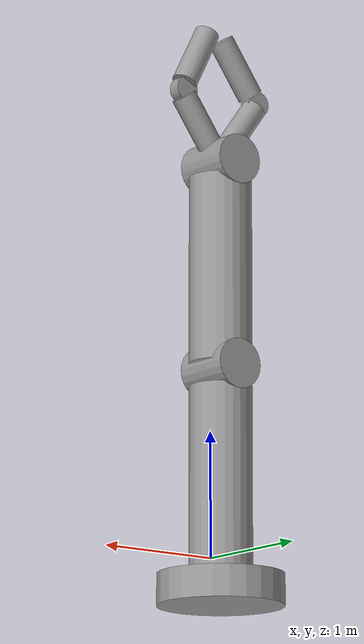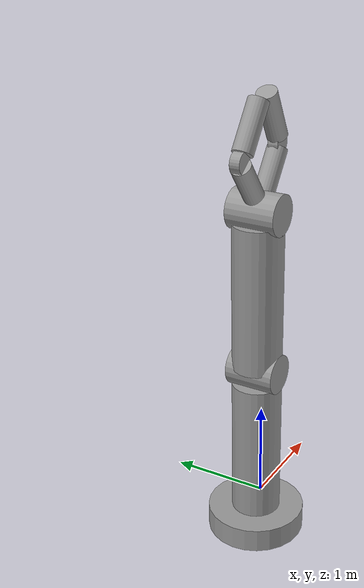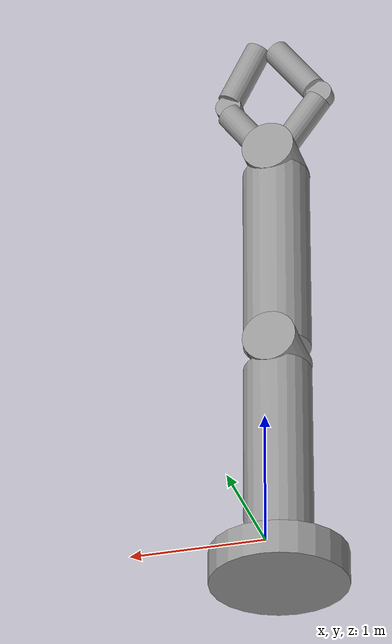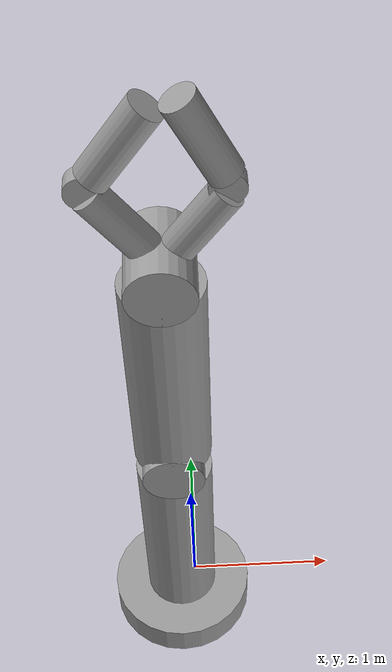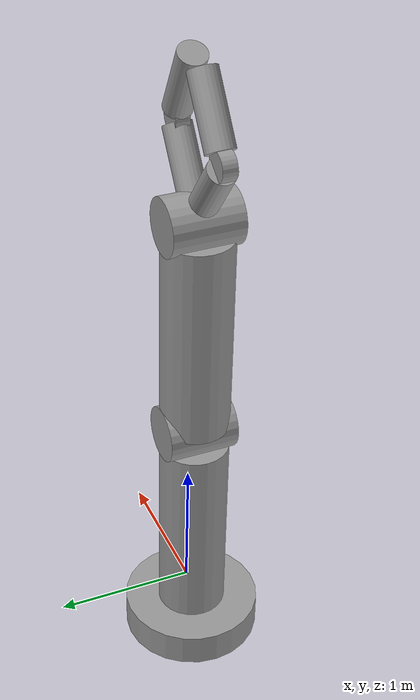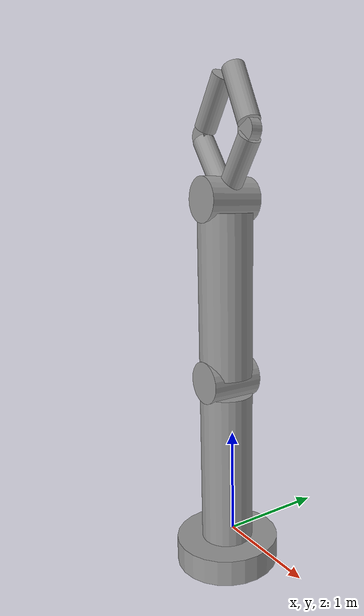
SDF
<?xml version='1.0'?>
<sdf version='1.6'>
  <model name='arm'>
    <link name='link_0'>
      <pose frame=''>-0.098684 -1.2e-05 -0.234647 0 -0 0</pose>
      <inertial>
        <mass>1</mass>
        <inertia>
          <ixx>0.145833</ixx>
          <ixy>0</ixy>
          <ixz>0</ixz>
          <iyy>0.145833</iyy>
          <iyz>0</iyz>
          <izz>0.125</izz>
        </inertia>
        <pose frame=''>0 0 0 0 -0 0</pose>
      </inertial>
      <gravity>1</gravity>
      <self_collide>0</self_collide>
      <kinematic>0</kinematic>
      <visual name='visual'>
        <pose frame=''>0 0 0 0 -0 0</pose>
        <geometry>
          <cylinder>
            <radius>0.5</radius>
            <length>0.25</length>
          </cylinder>
        </geometry>
        <material>
          <lighting>1</lighting>
          <script>
            <uri>file://media/materials/scripts/gazebo.material</uri>
            <name>Gazebo/Grey</name>
          </script>
          <shader type='pixel'>
            <normal_map>__default__</normal_map>
          </shader>
          <ambient>0.3 0.3 0.3 1</ambient>
          <diffuse>0.7 0.7 0.7 1</diffuse>
          <specular>0.01 0.01 0.01 1</specular>
          <emissive>0 0 0 1</emissive>
        </material>
        <transparency>0</transparency>
        <cast_shadows>1</cast_shadows>
      </visual>
      <collision name='collision'>
        <laser_retro>0</laser_retro>
        <max_contacts>10</max_contacts>
        <pose frame=''>0 0 0 0 -0 0</pose>
        <geometry>
          <cylinder>
            <radius>0.5</radius>
            <length>0.25</length>
          </cylinder>
        </geometry>
        <surface>
          <friction>
            <ode>
              <mu>1</mu>
              <mu2>1</mu2>
              <fdir1>0 0 0</fdir1>
              <slip1>0</slip1>
              <slip2>0</slip2>
            </ode>
            <torsional>
              <coefficient>1</coefficient>
              <patch_radius>0</patch_radius>
              <surface_radius>0</surface_radius>
              <use_patch_radius>1</use_patch_radius>
              <ode>
                <slip>0</slip>
              </ode>
            </torsional>
          </friction>
          <bounce>
            <restitution_coefficient>0</restitution_coefficient>
            <threshold>1e+06</threshold>
          </bounce>
          <contact>
            <collide_without_contact>0</collide_without_contact>
            <collide_without_contact_bitmask>1</collide_without_contact_bitmask>
            <collide_bitmask>1</collide_bitmask>
            <ode>
              <soft_cfm>0</soft_cfm>
              <soft_erp>0.2</soft_erp>
              <kp>1e+13</kp>
              <kd>1</kd>
              <max_vel>0.01</max_vel>
              <min_depth>0</min_depth>
            </ode>
            <bullet>
              <split_impulse>1</split_impulse>
              <split_impulse_penetration_threshold>-0.01</split_impulse_penetration_threshold>
              <soft_cfm>0</soft_cfm>
              <soft_erp>0.2</soft_erp>
              <kp>1e+13</kp>
              <kd>1</kd>
            </bullet>
          </contact>
        </surface>
      </collision>
    </link>
    <link name='link_1'>
      <pose frame=''>-0.098684 -1.2e-05 0.615353 0 -0 0</pose>
      <inertial>
        <mass>1</mass>
        <inertia>
          <ixx>0.145833</ixx>
          <ixy>0</ixy>
          <ixz>0</ixz>
          <iyy>0.145833</iyy>
          <iyz>0</iyz>
          <izz>0.125</izz>
        </inertia>
        <pose frame=''>0 0 0 0 -0 0</pose>
      </inertial>
      <gravity>1</gravity>
      <self_collide>0</self_collide>
      <kinematic>0</kinematic>
      <visual name='visual'>
        <pose frame=''>0 0 0 0 -0 0</pose>
        <geometry>
          <cylinder>
            <radius>0.25</radius>
            <length>1.5</length>
          </cylinder>
        </geometry>
        <material>
          <lighting>1</lighting>
          <script>
            <uri>file://media/materials/scripts/gazebo.material</uri>
            <name>Gazebo/Grey</name>
          </script>
          <shader type='pixel'>
            <normal_map>__default__</normal_map>
          </shader>
          <ambient>0.3 0.3 0.3 1</ambient>
          <diffuse>0.7 0.7 0.7 1</diffuse>
          <specular>0.01 0.01 0.01 1</specular>
          <emissive>0 0 0 1</emissive>
        </material>
        <transparency>0</transparency>
        <cast_shadows>1</cast_shadows>
      </visual>
      <collision name='collision'>
        <laser_retro>0</laser_retro>
        <max_contacts>10</max_contacts>
        <pose frame=''>0 0 0 0 -0 0</pose>
        <geometry>
          <cylinder>
            <radius>0.25</radius>
            <length>1.5</length>
          </cylinder>
        </geometry>
        <surface>
          <friction>
            <ode>
              <mu>1</mu>
              <mu2>1</mu2>
              <fdir1>0 0 0</fdir1>
              <slip1>0</slip1>
              <slip2>0</slip2>
            </ode>
            <torsional>
              <coefficient>1</coefficient>
              <patch_radius>0</patch_radius>
              <surface_radius>0</surface_radius>
              <use_patch_radius>1</use_patch_radius>
              <ode>
                <slip>0</slip>
              </ode>
            </torsional>
          </friction>
          <bounce>
            <restitution_coefficient>0</restitution_coefficient>
            <threshold>1e+06</threshold>
          </bounce>
          <contact>
            <collide_without_contact>0</collide_without_contact>
            <collide_without_contact_bitmask>1</collide_without_contact_bitmask>
            <collide_bitmask>1</collide_bitmask>
            <ode>
              <soft_cfm>0</soft_cfm>
              <soft_erp>0.2</soft_erp>
              <kp>1e+13</kp>
              <kd>1</kd>
              <max_vel>0.01</max_vel>
              <min_depth>0</min_depth>
            </ode>
            <bullet>
              <split_impulse>1</split_impulse>
              <split_impulse_penetration_threshold>-0.01</split_impulse_penetration_threshold>
              <soft_cfm>0</soft_cfm>
              <soft_erp>0.2</soft_erp>
              <kp>1e+13</kp>
              <kd>1</kd>
            </bullet>
          </contact>
        </surface>
      </collision>
    </link>
    <link name='link_1_clone'>
      <pose frame=''>-0.098684 -1.2e-05 2.29982 0 -0 0</pose>
      <inertial>
        <mass>1</mass>
        <inertia>
          <ixx>0.145833</ixx>
          <ixy>0</ixy>
          <ixz>0</ixz>
          <iyy>0.145833</iyy>
          <iyz>0</iyz>
          <izz>0.125</izz>
        </inertia>
        <pose frame=''>0 0 0 0 -0 0</pose>
      </inertial>
      <self_collide>0</self_collide>
      <kinematic>0</kinematic>
      <gravity>1</gravity>
      <visual name='visual'>
        <pose frame=''>0 0 0 0 -0 0</pose>
        <geometry>
          <cylinder>
            <radius>0.25</radius>
            <length>1.5</length>
          </cylinder>
        </geometry>
        <material>
          <lighting>1</lighting>
          <script>
            <uri>file://media/materials/scripts/gazebo.material</uri>
            <name>Gazebo/Grey</name>
          </script>
          <shader type='pixel'>
            <normal_map>__default__</normal_map>
          </shader>
          <ambient>0.3 0.3 0.3 1</ambient>
          <diffuse>0.7 0.7 0.7 1</diffuse>
          <specular>0.01 0.01 0.01 1</specular>
          <emissive>0 0 0 1</emissive>
        </material>
        <transparency>0</transparency>
        <cast_shadows>1</cast_shadows>
      </visual>
      <collision name='collision'>
        <laser_retro>0</laser_retro>
        <max_contacts>10</max_contacts>
        <pose frame=''>0 0 0 0 -0 0</pose>
        <geometry>
          <cylinder>
            <radius>0.25</radius>
            <length>1.5</length>
          </cylinder>
        </geometry>
        <surface>
          <friction>
            <ode>
              <mu>1</mu>
              <mu2>1</mu2>
              <fdir1>0 0 0</fdir1>
              <slip1>0</slip1>
              <slip2>0</slip2>
            </ode>
            <torsional>
              <coefficient>1</coefficient>
              <patch_radius>0</patch_radius>
              <surface_radius>0</surface_radius>
              <use_patch_radius>1</use_patch_radius>
              <ode>
                <slip>0</slip>
              </ode>
            </torsional>
          </friction>
          <bounce>
            <restitution_coefficient>0</restitution_coefficient>
            <threshold>1e+06</threshold>
          </bounce>
          <contact>
            <collide_without_contact>0</collide_without_contact>
            <collide_without_contact_bitmask>1</collide_without_contact_bitmask>
            <collide_bitmask>1</collide_bitmask>
            <ode>
              <soft_cfm>0</soft_cfm>
              <soft_erp>0.2</soft_erp>
              <kp>1e+13</kp>
              <kd>1</kd>
              <max_vel>0.01</max_vel>
              <min_depth>0</min_depth>
            </ode>
            <bullet>
              <split_impulse>1</split_impulse>
              <split_impulse_penetration_threshold>-0.01</split_impulse_penetration_threshold>
              <soft_cfm>0</soft_cfm>
              <soft_erp>0.2</soft_erp>
              <kp>1e+13</kp>
              <kd>1</kd>
            </bullet>
          </contact>
        </surface>
      </collision>
    </link>
    <link name='link_1_clone_clone'>
      <pose frame=''>-0.288715 -1.2e-05 3.47659 0 -0.628465 0</pose>
      <inertial>
        <mass>1</mass>
        <inertia>
          <ixx>0.145833</ixx>
          <ixy>0</ixy>
          <ixz>0</ixz>
          <iyy>0.145833</iyy>
          <iyz>0</iyz>
          <izz>0.125</izz>
        </inertia>
        <pose frame=''>0 0 0 0 -0 0</pose>
      </inertial>
      <self_collide>0</self_collide>
      <kinematic>0</kinematic>
      <gravity>1</gravity>
      <visual name='visual'>
        <pose frame=''>0 0 0 0 -0 0</pose>
        <geometry>
          <cylinder>
            <radius>0.1</radius>
            <length>0.5</length>
          </cylinder>
        </geometry>
        <material>
          <lighting>1</lighting>
          <script>
            <uri>file://media/materials/scripts/gazebo.material</uri>
            <name>Gazebo/Grey</name>
          </script>
          <shader type='pixel'>
            <normal_map>__default__</normal_map>
          </shader>
          <ambient>0.3 0.3 0.3 1</ambient>
          <diffuse>0.7 0.7 0.7 1</diffuse>
          <specular>0.01 0.01 0.01 1</specular>
          <emissive>0 0 0 1</emissive>
        </material>
        <transparency>0</transparency>
        <cast_shadows>1</cast_shadows>
      </visual>
      <collision name='collision'>
        <laser_retro>0</laser_retro>
        <max_contacts>10</max_contacts>
        <pose frame=''>0 0 0 0 -0 0</pose>
        <geometry>
          <cylinder>
            <radius>0.1</radius>
            <length>0.5</length>
          </cylinder>
        </geometry>
        <surface>
          <friction>
            <ode>
              <mu>1</mu>
              <mu2>1</mu2>
              <fdir1>0 0 0</fdir1>
              <slip1>0</slip1>
              <slip2>0</slip2>
            </ode>
            <torsional>
              <coefficient>1</coefficient>
              <patch_radius>0</patch_radius>
              <surface_radius>0</surface_radius>
              <use_patch_radius>1</use_patch_radius>
              <ode>
                <slip>0</slip>
              </ode>
            </torsional>
          </friction>
          <bounce>
            <restitution_coefficient>0</restitution_coefficient>
            <threshold>1e+06</threshold>
          </bounce>
          <contact>
            <collide_without_contact>0</collide_without_contact>
            <collide_without_contact_bitmask>1</collide_without_contact_bitmask>
            <collide_bitmask>1</collide_bitmask>
            <ode>
              <soft_cfm>0</soft_cfm>
              <soft_erp>0.2</soft_erp>
              <kp>1e+13</kp>
              <kd>1</kd>
              <max_vel>0.01</max_vel>
              <min_depth>0</min_depth>
            </ode>
            <bullet>
              <split_impulse>1</split_impulse>
              <split_impulse_penetration_threshold>-0.01</split_impulse_penetration_threshold>
              <soft_cfm>0</soft_cfm>
              <soft_erp>0.2</soft_erp>
              <kp>1e+13</kp>
              <kd>1</kd>
            </bullet>
          </contact>
        </surface>
      </collision>
    </link>
    <link name='link_1_clone_clone_clone'>
      <pose frame=''>-0.255993 -1.2e-05 3.98243 0 0.625 0</pose>
      <inertial>
        <mass>1</mass>
        <inertia>
          <ixx>0.145833</ixx>
          <ixy>0</ixy>
          <ixz>0</ixz>
          <iyy>0.145833</iyy>
          <iyz>0</iyz>
          <izz>0.125</izz>
        </inertia>
        <pose frame=''>0 0 0 0 -0 0</pose>
      </inertial>
      <self_collide>0</self_collide>
      <kinematic>0</kinematic>
      <gravity>1</gravity>
      <visual name='visual'>
        <pose frame=''>0 0 0 0 -0 0</pose>
        <geometry>
          <cylinder>
            <radius>0.1</radius>
            <length>0.5</length>
          </cylinder>
        </geometry>
        <material>
          <lighting>1</lighting>
          <script>
            <uri>file://media/materials/scripts/gazebo.material</uri>
            <name>Gazebo/Grey</name>
          </script>
          <shader type='pixel'>
            <normal_map>__default__</normal_map>
          </shader>
          <ambient>0.3 0.3 0.3 1</ambient>
          <diffuse>0.7 0.7 0.7 1</diffuse>
          <specular>0.01 0.01 0.01 1</specular>
          <emissive>0 0 0 1</emissive>
        </material>
        <transparency>0</transparency>
        <cast_shadows>1</cast_shadows>
      </visual>
      <collision name='collision'>
        <laser_retro>0</laser_retro>
        <max_contacts>10</max_contacts>
        <pose frame=''>0 0 0 0 -0 0</pose>
        <geometry>
          <cylinder>
            <radius>0.1</radius>
            <length>0.5</length>
          </cylinder>
        </geometry>
        <surface>
          <friction>
            <ode>
              <mu>1</mu>
              <mu2>1</mu2>
              <fdir1>0 0 0</fdir1>
              <slip1>0</slip1>
              <slip2>0</slip2>
            </ode>
            <torsional>
              <coefficient>1</coefficient>
              <patch_radius>0</patch_radius>
              <surface_radius>0</surface_radius>
              <use_patch_radius>1</use_patch_radius>
              <ode>
                <slip>0</slip>
              </ode>
            </torsional>
          </friction>
          <bounce>
            <restitution_coefficient>0</restitution_coefficient>
            <threshold>1e+06</threshold>
          </bounce>
          <contact>
            <collide_without_contact>0</collide_without_contact>
            <collide_without_contact_bitmask>1</collide_without_contact_bitmask>
            <collide_bitmask>1</collide_bitmask>
            <ode>
              <soft_cfm>0</soft_cfm>
              <soft_erp>0.2</soft_erp>
              <kp>1e+13</kp>
              <kd>1</kd>
              <max_vel>0.01</max_vel>
              <min_depth>0</min_depth>
            </ode>
            <bullet>
              <split_impulse>1</split_impulse>
              <split_impulse_penetration_threshold>-0.01</split_impulse_penetration_threshold>
              <soft_cfm>0</soft_cfm>
              <soft_erp>0.2</soft_erp>
              <kp>1e+13</kp>
              <kd>1</kd>
            </bullet>
          </contact>
        </surface>
      </collision>
    </link>
    <link name='link_1_clone_clone_clone_0'>
      <pose frame=''>0.145526 4e-05 4.00105 0 -0.466826 0</pose>
      <inertial>
        <mass>1</mass>
        <inertia>
          <ixx>0.145833</ixx>
          <ixy>0</ixy>
          <ixz>0</ixz>
          <iyy>0.145833</iyy>
          <iyz>0</iyz>
          <izz>0.125</izz>
        </inertia>
        <pose frame=''>0 0 0 0 -0 0</pose>
      </inertial>
      <self_collide>0</self_collide>
      <kinematic>0</kinematic>
      <visual name='visual'>
        <pose frame=''>0 0 0 0 -0 0</pose>
        <geometry>
          <cylinder>
            <radius>0.1</radius>
            <length>0.5</length>
          </cylinder>
        </geometry>
        <material>
          <lighting>1</lighting>
          <script>
            <uri>file://media/materials/scripts/gazebo.material</uri>
            <name>Gazebo/Grey</name>
          </script>
          <shader type='pixel'>
            <normal_map>__default__</normal_map>
          </shader>
          <ambient>0.3 0.3 0.3 1</ambient>
          <diffuse>0.7 0.7 0.7 1</diffuse>
          <specular>0.01 0.01 0.01 1</specular>
          <emissive>0 0 0 1</emissive>
        </material>
        <transparency>0</transparency>
        <cast_shadows>1</cast_shadows>
      </visual>
      <collision name='collision'>
        <laser_retro>0</laser_retro>
        <max_contacts>10</max_contacts>
        <pose frame=''>0 0 0 0 -0 0</pose>
        <geometry>
          <cylinder>
            <radius>0.1</radius>
            <length>0.5</length>
          </cylinder>
        </geometry>
        <surface>
          <friction>
            <ode>
              <mu>1</mu>
              <mu2>1</mu2>
              <fdir1>0 0 0</fdir1>
              <slip1>0</slip1>
              <slip2>0</slip2>
            </ode>
            <torsional>
              <coefficient>1</coefficient>
              <patch_radius>0</patch_radius>
              <surface_radius>0</surface_radius>
              <use_patch_radius>1</use_patch_radius>
              <ode>
                <slip>0</slip>
              </ode>
            </torsional>
          </friction>
          <bounce>
            <restitution_coefficient>0</restitution_coefficient>
            <threshold>1e+06</threshold>
          </bounce>
          <contact>
            <collide_without_contact>0</collide_without_contact>
            <collide_without_contact_bitmask>1</collide_without_contact_bitmask>
            <collide_bitmask>1</collide_bitmask>
            <ode>
              <soft_cfm>0</soft_cfm>
              <soft_erp>0.2</soft_erp>
              <kp>1e+13</kp>
              <kd>1</kd>
              <max_vel>0.01</max_vel>
              <min_depth>0</min_depth>
            </ode>
            <bullet>
              <split_impulse>1</split_impulse>
              <split_impulse_penetration_threshold>-0.01</split_impulse_penetration_threshold>
              <soft_cfm>0</soft_cfm>
              <soft_erp>0.2</soft_erp>
              <kp>1e+13</kp>
              <kd>1</kd>
            </bullet>
          </contact>
        </surface>
      </collision>
    </link>
    <link name='link_1_clone_clone_clone_clone'>
      <pose frame=''>0.118292 4e-05 3.46327 0 0.625 0</pose>
      <inertial>
        <mass>1</mass>
        <inertia>
          <ixx>0.145833</ixx>
          <ixy>0</ixy>
          <ixz>0</ixz>
          <iyy>0.145833</iyy>
          <iyz>0</iyz>
          <izz>0.125</izz>
        </inertia>
        <pose frame=''>0 0 0 0 -0 0</pose>
      </inertial>
      <self_collide>0</self_collide>
      <kinematic>0</kinematic>
      <visual name='visual'>
        <pose frame=''>0 0 0 0 -0 0</pose>
        <geometry>
          <cylinder>
            <radius>0.1</radius>
            <length>0.5</length>
          </cylinder>
        </geometry>
        <material>
          <lighting>1</lighting>
          <script>
            <uri>file://media/materials/scripts/gazebo.material</uri>
            <name>Gazebo/Grey</name>
          </script>
          <shader type='pixel'>
            <normal_map>__default__</normal_map>
          </shader>
          <ambient>0.3 0.3 0.3 1</ambient>
          <diffuse>0.7 0.7 0.7 1</diffuse>
          <specular>0.01 0.01 0.01 1</specular>
          <emissive>0 0 0 1</emissive>
        </material>
        <transparency>0</transparency>
        <cast_shadows>1</cast_shadows>
      </visual>
      <collision name='collision'>
        <laser_retro>0</laser_retro>
        <max_contacts>10</max_contacts>
        <pose frame=''>0 0 0 0 -0 0</pose>
        <geometry>
          <cylinder>
            <radius>0.1</radius>
            <length>0.5</length>
          </cylinder>
        </geometry>
        <surface>
          <friction>
            <ode>
              <mu>1</mu>
              <mu2>1</mu2>
              <fdir1>0 0 0</fdir1>
              <slip1>0</slip1>
              <slip2>0</slip2>
            </ode>
            <torsional>
              <coefficient>1</coefficient>
              <patch_radius>0</patch_radius>
              <surface_radius>0</surface_radius>
              <use_patch_radius>1</use_patch_radius>
              <ode>
                <slip>0</slip>
              </ode>
            </torsional>
          </friction>
          <bounce>
            <restitution_coefficient>0</restitution_coefficient>
            <threshold>1e+06</threshold>
          </bounce>
          <contact>
            <collide_without_contact>0</collide_without_contact>
            <collide_without_contact_bitmask>1</collide_without_contact_bitmask>
            <collide_bitmask>1</collide_bitmask>
            <ode>
              <soft_cfm>0</soft_cfm>
              <soft_erp>0.2</soft_erp>
              <kp>1e+13</kp>
              <kd>1</kd>
              <max_vel>0.01</max_vel>
              <min_depth>0</min_depth>
            </ode>
            <bullet>
              <split_impulse>1</split_impulse>
              <split_impulse_penetration_threshold>-0.01</split_impulse_penetration_threshold>
              <soft_cfm>0</soft_cfm>
              <soft_erp>0.2</soft_erp>
              <kp>1e+13</kp>
              <kd>1</kd>
            </bullet>
          </contact>
        </surface>
      </collision>
    </link>
    <link name='link_2'>
      <pose frame=''>-0.098684 -1.2e-05 1.51535 1.5707 -0 0</pose>
      <inertial>
        <mass>1</mass>
        <inertia>
          <ixx>0.145833</ixx>
          <ixy>0</ixy>
          <ixz>0</ixz>
          <iyy>0.145833</iyy>
          <iyz>0</iyz>
          <izz>0.125</izz>
        </inertia>
        <pose frame=''>0 0 0 0 -0 0</pose>
      </inertial>
      <gravity>1</gravity>
      <self_collide>0</self_collide>
      <kinematic>0</kinematic>
      <visual name='visual'>
        <pose frame=''>0 0 0 0 -0 0</pose>
        <geometry>
          <cylinder>
            <radius>0.2</radius>
            <length>0.5</length>
          </cylinder>
        </geometry>
        <material>
          <lighting>1</lighting>
          <script>
            <uri>file://media/materials/scripts/gazebo.material</uri>
            <name>Gazebo/Grey</name>
          </script>
          <shader type='pixel'>
            <normal_map>__default__</normal_map>
          </shader>
          <ambient>0.3 0.3 0.3 1</ambient>
          <diffuse>0.7 0.7 0.7 1</diffuse>
          <specular>0.01 0.01 0.01 1</specular>
          <emissive>0 0 0 1</emissive>
        </material>
        <transparency>0</transparency>
        <cast_shadows>1</cast_shadows>
      </visual>
      <collision name='collision'>
        <laser_retro>0</laser_retro>
        <max_contacts>10</max_contacts>
        <pose frame=''>0 0 0 0 -0 0</pose>
        <geometry>
          <cylinder>
            <radius>0.2</radius>
            <length>0.5</length>
          </cylinder>
        </geometry>
        <surface>
          <friction>
            <ode>
              <mu>1</mu>
              <mu2>1</mu2>
              <fdir1>0 0 0</fdir1>
              <slip1>0</slip1>
              <slip2>0</slip2>
            </ode>
            <torsional>
              <coefficient>1</coefficient>
              <patch_radius>0</patch_radius>
              <surface_radius>0</surface_radius>
              <use_patch_radius>1</use_patch_radius>
              <ode>
                <slip>0</slip>
              </ode>
            </torsional>
          </friction>
          <bounce>
            <restitution_coefficient>0</restitution_coefficient>
            <threshold>1e+06</threshold>
          </bounce>
          <contact>
            <collide_without_contact>0</collide_without_contact>
            <collide_without_contact_bitmask>1</collide_without_contact_bitmask>
            <collide_bitmask>1</collide_bitmask>
            <ode>
              <soft_cfm>0</soft_cfm>
              <soft_erp>0.2</soft_erp>
              <kp>1e+13</kp>
              <kd>1</kd>
              <max_vel>0.01</max_vel>
              <min_depth>0</min_depth>
            </ode>
            <bullet>
              <split_impulse>1</split_impulse>
              <split_impulse_penetration_threshold>-0.01</split_impulse_penetration_threshold>
              <soft_cfm>0</soft_cfm>
              <soft_erp>0.2</soft_erp>
              <kp>1e+13</kp>
              <kd>1</kd>
            </bullet>
          </contact>
        </surface>
      </collision>
    </link>
    <link name='link_2_clone'>
      <pose frame=''>-0.098684 4e-05 3.16254 1.5707 -0 0</pose>
      <inertial>
        <mass>1</mass>
        <inertia>
          <ixx>0.145833</ixx>
          <ixy>0</ixy>
          <ixz>0</ixz>
          <iyy>0.145833</iyy>
          <iyz>0</iyz>
          <izz>0.125</izz>
        </inertia>
        <pose frame=''>0 0 0 0 -0 0</pose>
      </inertial>
      <self_collide>0</self_collide>
      <kinematic>0</kinematic>
      <gravity>1</gravity>
      <visual name='visual'>
        <pose frame=''>0 0 0 0 -0 0</pose>
        <geometry>
          <cylinder>
            <radius>0.2</radius>
            <length>0.5</length>
          </cylinder>
        </geometry>
        <material>
          <lighting>1</lighting>
          <script>
            <uri>file://media/materials/scripts/gazebo.material</uri>
            <name>Gazebo/Grey</name>
          </script>
          <shader type='pixel'>
            <normal_map>__default__</normal_map>
          </shader>
          <ambient>0.3 0.3 0.3 1</ambient>
          <diffuse>0.7 0.7 0.7 1</diffuse>
          <specular>0.01 0.01 0.01 1</specular>
          <emissive>0 0 0 1</emissive>
        </material>
        <transparency>0</transparency>
        <cast_shadows>1</cast_shadows>
      </visual>
      <collision name='collision'>
        <laser_retro>0</laser_retro>
        <max_contacts>10</max_contacts>
        <pose frame=''>0 0 0 0 -0 0</pose>
        <geometry>
          <cylinder>
            <radius>0.2</radius>
            <length>0.5</length>
          </cylinder>
        </geometry>
        <surface>
          <friction>
            <ode>
              <mu>1</mu>
              <mu2>1</mu2>
              <fdir1>0 0 0</fdir1>
              <slip1>0</slip1>
              <slip2>0</slip2>
            </ode>
            <torsional>
              <coefficient>1</coefficient>
              <patch_radius>0</patch_radius>
              <surface_radius>0</surface_radius>
              <use_patch_radius>1</use_patch_radius>
              <ode>
                <slip>0</slip>
              </ode>
            </torsional>
          </friction>
          <bounce>
            <restitution_coefficient>0</restitution_coefficient>
            <threshold>1e+06</threshold>
          </bounce>
          <contact>
            <collide_without_contact>0</collide_without_contact>
            <collide_without_contact_bitmask>1</collide_without_contact_bitmask>
            <collide_bitmask>1</collide_bitmask>
            <ode>
              <soft_cfm>0</soft_cfm>
              <soft_erp>0.2</soft_erp>
              <kp>1e+13</kp>
              <kd>1</kd>
              <max_vel>0.01</max_vel>
              <min_depth>0</min_depth>
            </ode>
            <bullet>
              <split_impulse>1</split_impulse>
              <split_impulse_penetration_threshold>-0.01</split_impulse_penetration_threshold>
              <soft_cfm>0</soft_cfm>
              <soft_erp>0.2</soft_erp>
              <kp>1e+13</kp>
              <kd>1</kd>
            </bullet>
          </contact>
        </surface>
      </collision>
    </link>
    <link name='link_2_clone_clone'>
      <pose frame=''>-0.448684 -1.2e-05 3.71535 1.5707 -0 0</pose>
      <inertial>
        <mass>1</mass>
        <inertia>
          <ixx>0.145833</ixx>
          <ixy>0</ixy>
          <ixz>0</ixz>
          <iyy>0.145833</iyy>
          <iyz>0</iyz>
          <izz>0.125</izz>
        </inertia>
        <pose frame=''>0 0 0 0 -0 0</pose>
      </inertial>
      <self_collide>0</self_collide>
      <kinematic>0</kinematic>
      <gravity>1</gravity>
      <visual name='visual'>
        <pose frame=''>0 0 0 0 -0 0</pose>
        <geometry>
          <cylinder>
            <radius>0.1</radius>
            <length>0.1</length>
          </cylinder>
        </geometry>
        <material>
          <lighting>1</lighting>
          <script>
            <uri>file://media/materials/scripts/gazebo.material</uri>
            <name>Gazebo/Grey</name>
          </script>
          <shader type='pixel'>
            <normal_map>__default__</normal_map>
          </shader>
          <ambient>0.3 0.3 0.3 1</ambient>
          <diffuse>0.7 0.7 0.7 1</diffuse>
          <specular>0.01 0.01 0.01 1</specular>
          <emissive>0 0 0 1</emissive>
        </material>
        <transparency>0</transparency>
        <cast_shadows>1</cast_shadows>
      </visual>
      <collision name='collision'>
        <laser_retro>0</laser_retro>
        <max_contacts>10</max_contacts>
        <pose frame=''>0 0 0 0 -0 0</pose>
        <geometry>
          <cylinder>
            <radius>0.1</radius>
            <length>0.1</length>
          </cylinder>
        </geometry>
        <surface>
          <friction>
            <ode>
              <mu>1</mu>
              <mu2>1</mu2>
              <fdir1>0 0 0</fdir1>
              <slip1>0</slip1>
              <slip2>0</slip2>
            </ode>
            <torsional>
              <coefficient>1</coefficient>
              <patch_radius>0</patch_radius>
              <surface_radius>0</surface_radius>
              <use_patch_radius>1</use_patch_radius>
              <ode>
                <slip>0</slip>
              </ode>
            </torsional>
          </friction>
          <bounce>
            <restitution_coefficient>0</restitution_coefficient>
            <threshold>1e+06</threshold>
          </bounce>
          <contact>
            <collide_without_contact>0</collide_without_contact>
            <collide_without_contact_bitmask>1</collide_without_contact_bitmask>
            <collide_bitmask>1</collide_bitmask>
            <ode>
              <soft_cfm>0</soft_cfm>
              <soft_erp>0.2</soft_erp>
              <kp>1e+13</kp>
              <kd>1</kd>
              <max_vel>0.01</max_vel>
              <min_depth>0</min_depth>
            </ode>
            <bullet>
              <split_impulse>1</split_impulse>
              <split_impulse_penetration_threshold>-0.01</split_impulse_penetration_threshold>
              <soft_cfm>0</soft_cfm>
              <soft_erp>0.2</soft_erp>
              <kp>1e+13</kp>
              <kd>1</kd>
            </bullet>
          </contact>
        </surface>
      </collision>
    </link>
    <link name='link_2_clone_clone_clone'>
      <pose frame=''>0.264148 4e-05 3.7166 1.5707 -0 0</pose>
      <inertial>
        <mass>1</mass>
        <inertia>
          <ixx>0.145833</ixx>
          <ixy>0</ixy>
          <ixz>0</ixz>
          <iyy>0.145833</iyy>
          <iyz>0</iyz>
          <izz>0.125</izz>
        </inertia>
        <pose frame=''>0 0 0 0 -0 0</pose>
      </inertial>
      <self_collide>0</self_collide>
      <kinematic>0</kinematic>
      <gravity>1</gravity>
      <visual name='visual'>
        <pose frame=''>0 0 0 0 -0 0</pose>
        <geometry>
          <cylinder>
            <radius>0.1</radius>
            <length>0.1</length>
          </cylinder>
        </geometry>
        <material>
          <lighting>1</lighting>
          <script>
            <uri>file://media/materials/scripts/gazebo.material</uri>
            <name>Gazebo/Grey</name>
          </script>
          <shader type='pixel'>
            <normal_map>__default__</normal_map>
          </shader>
          <ambient>0.3 0.3 0.3 1</ambient>
          <diffuse>0.7 0.7 0.7 1</diffuse>
          <specular>0.01 0.01 0.01 1</specular>
          <emissive>0 0 0 1</emissive>
        </material>
        <transparency>0</transparency>
        <cast_shadows>1</cast_shadows>
      </visual>
      <collision name='collision'>
        <laser_retro>0</laser_retro>
        <max_contacts>10</max_contacts>
        <pose frame=''>0 0 0 0 -0 0</pose>
        <geometry>
          <cylinder>
            <radius>0.1</radius>
            <length>0.1</length>
          </cylinder>
        </geometry>
        <surface>
          <friction>
            <ode>
              <mu>1</mu>
              <mu2>1</mu2>
              <fdir1>0 0 0</fdir1>
              <slip1>0</slip1>
              <slip2>0</slip2>
            </ode>
            <torsional>
              <coefficient>1</coefficient>
              <patch_radius>0</patch_radius>
              <surface_radius>0</surface_radius>
              <use_patch_radius>1</use_patch_radius>
              <ode>
                <slip>0</slip>
              </ode>
            </torsional>
          </friction>
          <bounce>
            <restitution_coefficient>0</restitution_coefficient>
            <threshold>1e+06</threshold>
          </bounce>
          <contact>
            <collide_without_contact>0</collide_without_contact>
            <collide_without_contact_bitmask>1</collide_without_contact_bitmask>
            <collide_bitmask>1</collide_bitmask>
            <ode>
              <soft_cfm>0</soft_cfm>
              <soft_erp>0.2</soft_erp>
              <kp>1e+13</kp>
              <kd>1</kd>
              <max_vel>0.01</max_vel>
              <min_depth>0</min_depth>
            </ode>
            <bullet>
              <split_impulse>1</split_impulse>
              <split_impulse_penetration_threshold>-0.01</split_impulse_penetration_threshold>
              <soft_cfm>0</soft_cfm>
              <soft_erp>0.2</soft_erp>
              <kp>1e+13</kp>
              <kd>1</kd>
            </bullet>
          </contact>
        </surface>
      </collision>
    </link>
    <joint name='link_0_JOINT_0' type='revolute'>
      <parent>link_0</parent>
      <child>link_1</child>
      <pose frame=''>0 0 0 0 -0 0</pose>
      <axis>
        <xyz>0 0 1</xyz>
        <use_parent_model_frame>0</use_parent_model_frame>
        <limit>
          <lower>-1.79769e+308</lower>
          <upper>1.79769e+308</upper>
          <effort>-1</effort>
          <velocity>-1</velocity>
        </limit>
        <dynamics>
          <spring_reference>0</spring_reference>
          <spring_stiffness>0</spring_stiffness>
          <damping>0</damping>
        </dynamics>
      </axis>
      <physics>
        <ode>
          <limit>
            <cfm>0</cfm>
            <erp>0.2</erp>
          </limit>
          <suspension>
            <cfm>0</cfm>
            <erp>0.2</erp>
          </suspension>
        </ode>
      </physics>
    </joint>
    <joint name='link_1_JOINT_1' type='fixed'>
      <parent>link_1</parent>
      <child>link_2</child>
      <pose frame=''>0 0 0 0 -0 0</pose>
      <physics>
        <ode>
          <limit>
            <cfm>0</cfm>
            <erp>0.2</erp>
          </limit>
          <suspension>
            <cfm>0</cfm>
            <erp>0.2</erp>
          </suspension>
        </ode>
      </physics>
    </joint>
    <joint name='link_1_clone_JOINT_3' type='fixed'>
      <parent>link_1_clone</parent>
      <child>link_2_clone</child>
      <pose frame=''>0 0 0 0 -0 0</pose>
      <physics>
        <ode>
          <limit>
            <cfm>0</cfm>
            <erp>0.2</erp>
          </limit>
          <suspension>
            <cfm>0</cfm>
            <erp>0.2</erp>
          </suspension>
        </ode>
      </physics>
    </joint>
    <joint name='link_1_clone_clone_JOINT_5' type='fixed'>
      <parent>link_1_clone_clone</parent>
      <child>link_2_clone_clone</child>
      <pose frame=''>0 0 0 0 -0 0</pose>
      <physics>
        <ode>
          <limit>
            <cfm>0</cfm>
            <erp>0.2</erp>
          </limit>
          <suspension>
            <cfm>0</cfm>
            <erp>0.2</erp>
          </suspension>
        </ode>
      </physics>
    </joint>
    <joint name='link_1_clone_clone_clone_clone_JOINT_8' type='fixed'>
      <parent>link_1_clone_clone_clone_clone</parent>
      <child>link_2_clone_clone_clone</child>
      <pose frame=''>0 0 0 0 -0 0</pose>
      <physics>
        <ode>
          <limit>
            <cfm>0</cfm>
            <erp>0.2</erp>
          </limit>
          <suspension>
            <cfm>0</cfm>
            <erp>0.2</erp>
          </suspension>
        </ode>
      </physics>
    </joint>
    <joint name='link_2_JOINT_2' type='revolute'>
      <parent>link_2</parent>
      <child>link_1_clone</child>
      <pose frame=''>0 0 0 0 -0 0</pose>
      <axis>
        <xyz>0 0 1</xyz>
        <use_parent_model_frame>0</use_parent_model_frame>
        <limit>
          <lower>-1.79769e+308</lower>
          <upper>1.79769e+308</upper>
          <effort>-1</effort>
          <velocity>-1</velocity>
        </limit>
        <dynamics>
          <spring_reference>0</spring_reference>
          <spring_stiffness>0</spring_stiffness>
          <damping>0</damping>
        </dynamics>
      </axis>
      <physics>
        <ode>
          <limit>
            <cfm>0</cfm>
            <erp>0.2</erp>
          </limit>
          <suspension>
            <cfm>0</cfm>
            <erp>0.2</erp>
          </suspension>
        </ode>
      </physics>
    </joint>
    <joint name='link_2_clone_JOINT_4' type='revolute'>
      <parent>link_2_clone</parent>
      <child>link_1_clone_clone</child>
      <pose frame=''>0 0 0 0 -0 0</pose>
      <axis>
        <xyz>0 0 1</xyz>
        <use_parent_model_frame>0</use_parent_model_frame>
        <limit>
          <lower>-1.79769e+308</lower>
          <upper>1.79769e+308</upper>
          <effort>-1</effort>
          <velocity>-1</velocity>
        </limit>
        <dynamics>
          <spring_reference>0</spring_reference>
          <spring_stiffness>0</spring_stiffness>
          <damping>0</damping>
        </dynamics>
      </axis>
      <physics>
        <ode>
          <limit>
            <cfm>0</cfm>
            <erp>0.2</erp>
          </limit>
          <suspension>
            <cfm>0</cfm>
            <erp>0.2</erp>
          </suspension>
        </ode>
      </physics>
    </joint>
    <joint name='link_2_clone_JOINT_7' type='revolute'>
      <parent>link_2_clone</parent>
      <child>link_1_clone_clone_clone_clone</child>
      <pose frame=''>0 0 0 0 -0 0</pose>
      <axis>
        <xyz>0 0 1</xyz>
        <use_parent_model_frame>0</use_parent_model_frame>
        <limit>
          <lower>-1.79769e+308</lower>
          <upper>1.79769e+308</upper>
          <effort>-1</effort>
          <velocity>-1</velocity>
        </limit>
        <dynamics>
          <spring_reference>0</spring_reference>
          <spring_stiffness>0</spring_stiffness>
          <damping>0</damping>
        </dynamics>
      </axis>
      <physics>
        <ode>
          <limit>
            <cfm>0</cfm>
            <erp>0.2</erp>
          </limit>
          <suspension>
            <cfm>0</cfm>
            <erp>0.2</erp>
          </suspension>
        </ode>
      </physics>
    </joint>
    <joint name='link_2_clone_clone_JOINT_6' type='revolute'>
      <parent>link_2_clone_clone</parent>
      <child>link_1_clone_clone_clone</child>
      <pose frame=''>0 0 0 0 -0 0</pose>
      <axis>
        <xyz>0 0 1</xyz>
        <use_parent_model_frame>0</use_parent_model_frame>
        <limit>
          <lower>-1.79769e+308</lower>
          <upper>1.79769e+308</upper>
          <effort>-1</effort>
          <velocity>-1</velocity>
        </limit>
        <dynamics>
          <spring_reference>0</spring_reference>
          <spring_stiffness>0</spring_stiffness>
          <damping>0</damping>
        </dynamics>
      </axis>
      <physics>
        <ode>
          <limit>
            <cfm>0</cfm>
            <erp>0.2</erp>
          </limit>
          <suspension>
            <cfm>0</cfm>
            <erp>0.2</erp>
          </suspension>
        </ode>
      </physics>
    </joint>
    <joint name='link_2_clone_clone_clone_JOINT_9' type='revolute'>
      <parent>link_2_clone_clone_clone</parent>
      <child>link_1_clone_clone_clone_0</child>
      <pose frame=''>0 0 0 0 -0 0</pose>
      <axis>
        <xyz>0 0 1</xyz>
        <use_parent_model_frame>0</use_parent_model_frame>
        <limit>
          <lower>-1.79769e+308</lower>
          <upper>1.79769e+308</upper>
          <effort>-1</effort>
          <velocity>-1</velocity>
        </limit>
        <dynamics>
          <spring_reference>0</spring_reference>
          <spring_stiffness>0</spring_stiffness>
          <damping>0</damping>
        </dynamics>
      </axis>
      <physics>
        <ode>
          <limit>
            <cfm>0</cfm>
            <erp>0.2</erp>
          </limit>
          <suspension>
            <cfm>0</cfm>
            <erp>0.2</erp>
          </suspension>
        </ode>
      </physics>
    </joint>
    <static>0</static>
    <allow_auto_disable>1</allow_auto_disable>
  </model>
</sdf>
